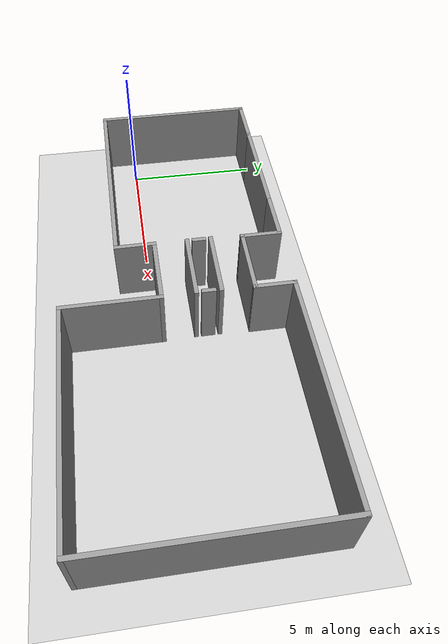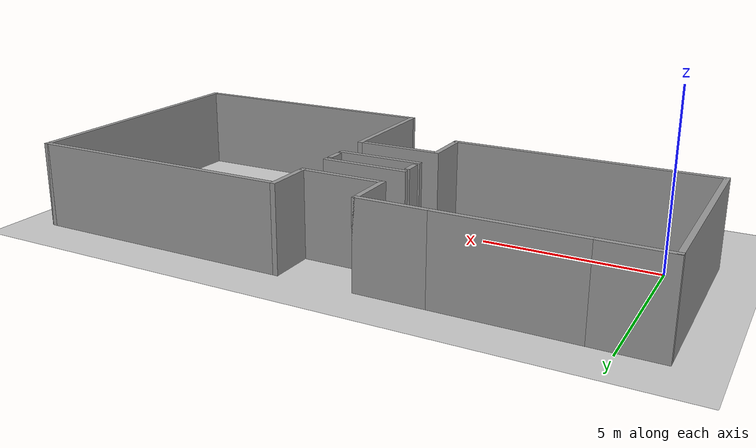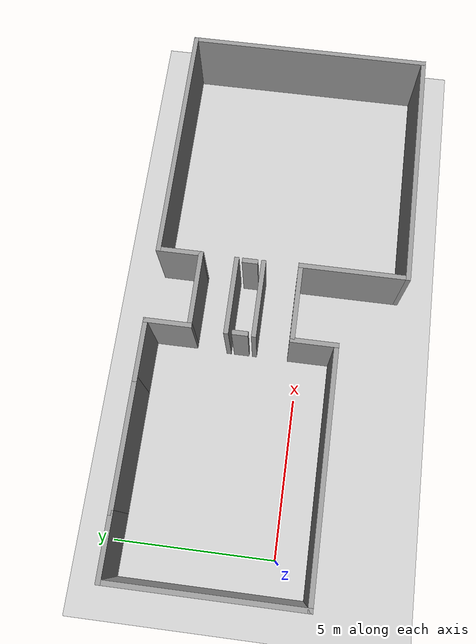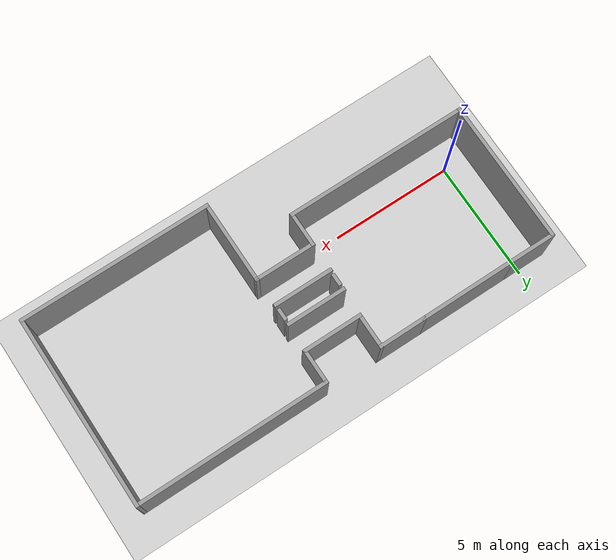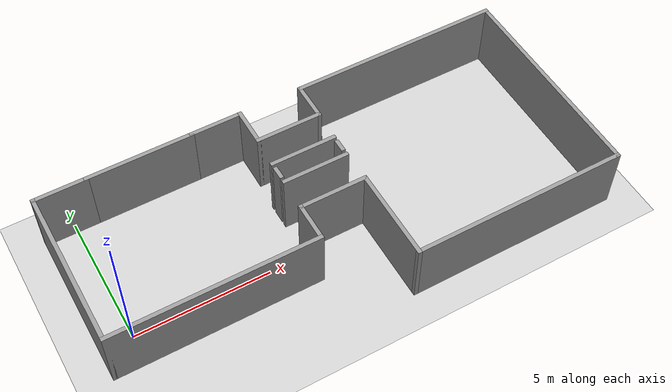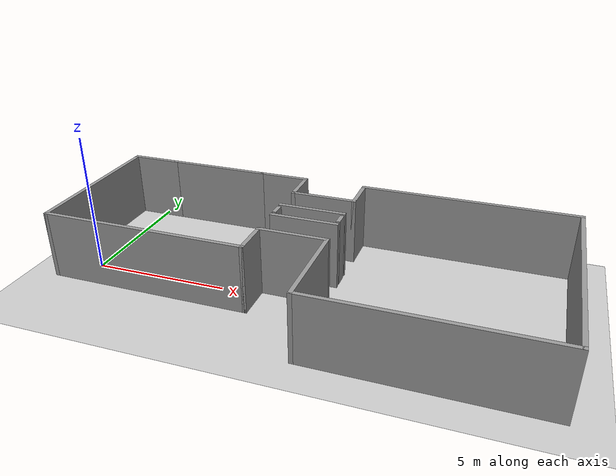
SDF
<sdf version="1.7">
 <world name="default">
  <light name="sun" type="directional">
   <pose>0 0 10 0 -0 0</pose>
   <diffuse>0.8 0.8 0.8 1</diffuse>
   <specular>0.2 0.2 0.2 1</specular>
   <attenuation>
    <range>1000</range>
    <constant>0.9</constant>
    <linear>0.01</linear>
    <quadratic>0.001</quadratic>
   </attenuation>
   <direction>-0.5 0.1 -0.9</direction>
   <spot><inner_angle>0</inner_angle><outer_angle>0</outer_angle><falloff>0</falloff></spot>
  </light>
  <model name="ground_plane">
   <static>1</static>
   <link name="link">
    <collision name="collision">
     <geometry><plane><normal>0 0 1</normal><size>100 100</size></plane></geometry>
     <surface><friction><ode><mu>100</mu><mu2>50</mu2></ode></friction></surface>
    </collision>
    <visual name="visual">
     <cast_shadows>0</cast_shadows>
     <geometry><plane><normal>0 0 1</normal><size>100 100</size></plane></geometry>
     <material>
      <script><uri>file://media/materials/scripts/gazebo.material</uri><name>Gazebo/Grey</name></script>
     </material>
    </visual>
   </link>
  </model>
  <gravity>0 0 -9.8</gravity>
  <magnetic_field>6e-06 2.3e-05 -4.2e-05</magnetic_field>
  <atmosphere type="adiabatic"/>
  <physics type="ode">
   <max_step_size>0.001</max_step_size>
   <real_time_factor>1</real_time_factor>
   <real_time_update_rate>1000</real_time_update_rate>
  </physics>
  <scene><ambient>0.4 0.4 0.4 1</ambient><background>0.7 0.7 0.7 1</background><shadows>1</shadows></scene>
  <spherical_coordinates>
   <surface_model>EARTH_WGS84</surface_model>
   <latitude_deg>0</latitude_deg>
   <longitude_deg>0</longitude_deg>
   <elevation>0</elevation>
   <heading_deg>0</heading_deg>
  </spherical_coordinates>
  <model name="metro_terminal">
   <pose>7.77378 1.33854 0 0 -0 0</pose>
   <link name="Wall_1">
    <collision name="Wall_1_Collision">
     <geometry><box><size>2 0.15 2.5</size></box></geometry>
     <pose>0 0 1.25 0 -0 0</pose>
    </collision>
    <visual name="Wall_1_Visual">
     <pose>0 0 1.25 0 -0 0</pose>
     <geometry><box><size>2 0.15 2.5</size></box></geometry>
     <material>
      <script><uri>file://media/materials/scripts/gazebo.material</uri><name>Gazebo/Grey</name></script>
      <ambient>1 1 1 1</ambient>
     </material>
     <meta><layer>0</layer></meta>
    </visual>
    <pose>-2.25 3.4475 0 0 -0 0</pose>
   </link>
   <link name="Wall_11">
    <collision name="Wall_11_Collision">
     <geometry><box><size>1.5 0.15 2.5</size></box></geometry>
     <pose>0 0 1.25 0 -0 0</pose>
    </collision>
    <visual name="Wall_11_Visual">
     <pose>0 0 1.25 0 -0 0</pose>
     <geometry><box><size>1.5 0.15 2.5</size></box></geometry>
     <material>
      <script><uri>file://media/materials/scripts/gazebo.material</uri><name>Gazebo/Grey</name></script>
      <ambient>1 1 1 1</ambient>
     </material>
     <meta><layer>0</layer></meta>
    </visual>
    <pose>-1.325 2.7725 0 0 -0 -1.5708</pose>
   </link>
   <link name="Wall_13">
    <collision name="Wall_13_Collision">
     <geometry><box><size>2.5 0.15 2.5</size></box></geometry>
     <pose>0 0 1.25 0 -0 0</pose>
    </collision>
    <visual name="Wall_13_Visual">
     <pose>0 0 1.25 0 -0 0</pose>
     <geometry><box><size>2.5 0.15 2.5</size></box></geometry>
     <material>
      <script><uri>file://media/materials/scripts/gazebo.material</uri><name>Gazebo/Grey</name></script>
      <ambient>1 1 1 1</ambient>
     </material>
     <meta><layer>0</layer></meta>
    </visual>
    <pose>-0.15 2.0975 0 0 -0 0</pose>
   </link>
   <link name="Wall_14">
    <collision name="Wall_14_Collision">
     <geometry><box><size>1.5 0.15 2.5</size></box></geometry>
     <pose>0 0 1.25 0 -0 0</pose>
    </collision>
    <visual name="Wall_14_Visual">
     <pose>0 0 1.25 0 -0 0</pose>
     <geometry><box><size>1.5 0.15 2.5</size></box></geometry>
     <material>
      <script><uri>file://media/materials/scripts/gazebo.material</uri><name>Gazebo/Grey</name></script>
      <ambient>1 1 1 1</ambient>
     </material>
     <meta><layer>0</layer></meta>
    </visual>
    <pose>1.025 2.7725 0 0 -0 1.5708</pose>
   </link>
   <link name="Wall_15">
    <collision name="Wall_15_Collision">
     <geometry><box><size>8 0.15 2.5</size></box></geometry>
     <pose>0 0 1.25 0 -0 0</pose>
    </collision>
    <visual name="Wall_15_Visual">
     <pose>0 0 1.25 0 -0 0</pose>
     <geometry><box><size>8 0.15 2.5</size></box></geometry>
     <material>
      <script><uri>file://media/materials/scripts/gazebo.material</uri><name>Gazebo/Grey</name></script>
      <ambient>1 1 1 1</ambient>
     </material>
     <meta><layer>0</layer></meta>
    </visual>
    <pose>4.95 3.4475 0 0 -0 0</pose>
   </link>
   <link name="Wall_18">
    <collision name="Wall_18_Collision">
     <geometry><box><size>8 0.15 2.5</size></box></geometry>
     <pose>0 0 1.25 0 -0 0</pose>
    </collision>
    <visual name="Wall_18_Visual">
     <pose>0 0 1.25 0 -0 0</pose>
     <geometry><box><size>8 0.15 2.5</size></box></geometry>
     <material>
      <script><uri>file://media/materials/scripts/gazebo.material</uri><name>Gazebo/Grey</name></script>
      <ambient>1 1 1 1</ambient>
     </material>
     <meta><layer>0</layer></meta>
    </visual>
    <pose>8.875 -0.4775 0 0 -0 -1.5708</pose>
   </link>
   <link name="Wall_19">
    <collision name="Wall_19_Collision">
     <geometry><box><size>8 0.15 2.5</size></box></geometry>
     <pose>0 0 1.25 0 -0 0</pose>
    </collision>
    <visual name="Wall_19_Visual">
     <pose>0 0 1.25 0 -0 0</pose>
     <geometry><box><size>8 0.15 2.5</size></box></geometry>
     <material>
      <script><uri>file://media/materials/scripts/gazebo.material</uri><name>Gazebo/Grey</name></script>
      <ambient>1 1 1 1</ambient>
     </material>
     <meta><layer>0</layer></meta>
    </visual>
    <pose>4.95 -4.4025 0 0 -0 3.14159</pose>
   </link>
   <link name="Wall_20">
    <collision name="Wall_20_Collision">
     <geometry><box><size>3.5 0.15 2.5</size></box></geometry>
     <pose>0 0 1.25 0 -0 0</pose>
    </collision>
    <visual name="Wall_20_Visual">
     <pose>0 0 1.25 0 -0 0</pose>
     <geometry><box><size>3.5 0.15 2.5</size></box></geometry>
     <material>
      <script><uri>file://media/materials/scripts/gazebo.material</uri><name>Gazebo/Grey</name></script>
      <ambient>1 1 1 1</ambient>
     </material>
     <meta><layer>0</layer></meta>
    </visual>
    <pose>1.025 -2.7275 0 0 -0 1.5708</pose>
   </link>
   <link name="Wall_21">
    <collision name="Wall_21_Collision">
     <geometry><box><size>2.56969 0.15 2.5</size></box></geometry>
     <pose>0 0 1.25 0 -0 0</pose>
    </collision>
    <visual name="Wall_21_Visual">
     <pose>0 0 1.25 0 -0 0</pose>
     <geometry><box><size>2.56969 0.15 2.5</size></box></geometry>
     <material>
      <script><uri>file://media/materials/scripts/gazebo.material</uri><name>Gazebo/Grey</name></script>
      <ambient>1 1 1 1</ambient>
     </material>
     <meta><layer>0</layer></meta>
    </visual>
    <pose>-0.184844 -1.0525 0 0 -0 3.14159</pose>
   </link>
   <link name="Wall_23">
    <collision name="Wall_23_Collision">
     <geometry><box><size>0.5 0.15 2.5</size></box></geometry>
     <pose>0 0 1.25 0 -0 0</pose>
    </collision>
    <visual name="Wall_23_Visual">
     <pose>0 0 1.25 0 -0 0</pose>
     <geometry><box><size>0.5 0.15 2.5</size></box></geometry>
     <material>
      <script><uri>file://media/materials/scripts/gazebo.material</uri><name>Gazebo/Grey</name></script>
      <ambient>1 1 1 1</ambient>
     </material>
     <meta><layer>0</layer></meta>
    </visual>
    <pose>-1.37653 0.539327 0 0 -0 -1.5708</pose>
   </link>
   <link name="Wall_24">
    <collision name="Wall_24_Collision">
     <geometry><box><size>2.5 0.15 2.5</size></box></geometry>
     <pose>0 0 1.25 0 -0 0</pose>
    </collision>
    <visual name="Wall_24_Visual">
     <pose>0 0 1.25 0 -0 0</pose>
     <geometry><box><size>2.5 0.15 2.5</size></box></geometry>
     <material>
      <script><uri>file://media/materials/scripts/gazebo.material</uri><name>Gazebo/Grey</name></script>
      <ambient>1 1 1 1</ambient>
     </material>
     <meta><layer>0</layer></meta>
    </visual>
    <pose>-0.201533 0.114327 0 0 -0 0</pose>
   </link>
   <link name="Wall_25">
    <collision name="Wall_25_Collision">
     <geometry><box><size>0.5 0.15 2.5</size></box></geometry>
     <pose>0 0 1.25 0 -0 0</pose>
    </collision>
    <visual name="Wall_25_Visual">
     <pose>0 0 1.25 0 -0 0</pose>
     <geometry><box><size>0.5 0.15 2.5</size></box></geometry>
     <material>
      <script><uri>file://media/materials/scripts/gazebo.material</uri><name>Gazebo/Grey</name></script>
      <ambient>1 1 1 1</ambient>
     </material>
     <meta><layer>0</layer></meta>
    </visual>
    <pose>0.973467 0.539327 0 0 -0 1.5708</pose>
   </link>
   <link name="Wall_26">
    <collision name="Wall_26_Collision">
     <geometry><box><size>2.5 0.15 2.5</size></box></geometry>
     <pose>0 0 1.25 0 -0 0</pose>
    </collision>
    <visual name="Wall_26_Visual">
     <pose>0 0 1.25 0 -0 0</pose>
     <geometry><box><size>2.5 0.15 2.5</size></box></geometry>
     <material>
      <script><uri>file://media/materials/scripts/gazebo.material</uri><name>Gazebo/Grey</name></script>
      <ambient>1 1 1 1</ambient>
     </material>
     <meta><layer>0</layer></meta>
    </visual>
    <pose>-0.201533 0.964327 0 0 -0 3.14159</pose>
   </link>
   <link name="Wall_3">
    <collision name="Wall_3_Collision">
     <geometry><box><size>4 0.15 2.5</size></box></geometry>
     <pose>0 0 1.25 0 -0 0</pose>
    </collision>
    <visual name="Wall_3_Visual">
     <pose>0 0 1.25 0 -0 0</pose>
     <geometry><box><size>4 0.15 2.5</size></box></geometry>
     <material>
      <script><uri>file://media/materials/scripts/gazebo.material</uri><name>Gazebo/Grey</name></script>
      <ambient>1 1 1 1</ambient>
     </material>
     <meta><layer>0</layer></meta>
    </visual>
    <pose>-5.1 3.4475 0 0 -0 3.14159</pose>
   </link>
   <link name="Wall_5">
    <collision name="Wall_5_Collision">
     <geometry><box><size>2 0.15 2.5</size></box></geometry>
     <pose>0 0 1.25 0 -0 0</pose>
    </collision>
    <visual name="Wall_5_Visual">
     <pose>0 0 1.25 0 -0 0</pose>
     <geometry><box><size>2 0.15 2.5</size></box></geometry>
     <material>
      <script><uri>file://media/materials/scripts/gazebo.material</uri><name>Gazebo/Grey</name></script>
      <ambient>1 1 1 1</ambient>
     </material>
     <meta><layer>0</layer></meta>
    </visual>
    <pose>-7.95 3.4475 0 0 -0 3.14159</pose>
   </link>
   <link name="Wall_7">
    <collision name="Wall_7_Collision">
     <geometry><box><size>6 0.15 2.5</size></box></geometry>
     <pose>0 0 1.25 0 -0 0</pose>
    </collision>
    <visual name="Wall_7_Visual">
     <pose>0 0 1.25 0 -0 0</pose>
     <geometry><box><size>6 0.15 2.5</size></box></geometry>
     <material>
      <script><uri>file://media/materials/scripts/gazebo.material</uri><name>Gazebo/Grey</name></script>
      <ambient>1 1 1 1</ambient>
     </material>
     <meta><layer>0</layer></meta>
    </visual>
    <pose>-8.875 0.5225 0 0 -0 -1.5708</pose>
   </link>
   <link name="Wall_8">
    <collision name="Wall_8_Collision">
     <geometry><box><size>7.63031 0.15 2.5</size></box></geometry>
     <pose>0 0 1.25 0 -0 0</pose>
    </collision>
    <visual name="Wall_8_Visual">
     <pose>0 0 1.25 0 -0 0</pose>
     <geometry><box><size>7.63031 0.15 2.5</size></box></geometry>
     <material>
      <script><uri>file://media/materials/scripts/gazebo.material</uri><name>Gazebo/Grey</name></script>
      <ambient>1 1 1 1</ambient>
     </material>
     <meta><layer>0</layer></meta>
    </visual>
    <pose>-5.13485 -2.4025 0 0 -0 0</pose>
   </link>
   <link name="Wall_9">
    <collision name="Wall_9_Collision">
     <geometry><box><size>1.5 0.15 2.5</size></box></geometry>
     <pose>0 0 1.25 0 -0 0</pose>
    </collision>
    <visual name="Wall_9_Visual">
     <pose>0 0 1.25 0 -0 0</pose>
     <geometry><box><size>1.5 0.15 2.5</size></box></geometry>
     <material>
      <script><uri>file://media/materials/scripts/gazebo.material</uri><name>Gazebo/Grey</name></script>
      <ambient>1 1 1 1</ambient>
     </material>
     <meta><layer>0</layer></meta>
    </visual>
    <pose>-1.39469 -1.7275 0 0 -0 1.5708</pose>
   </link>
   <static>1</static>
  </model>
 </world>
</sdf>
